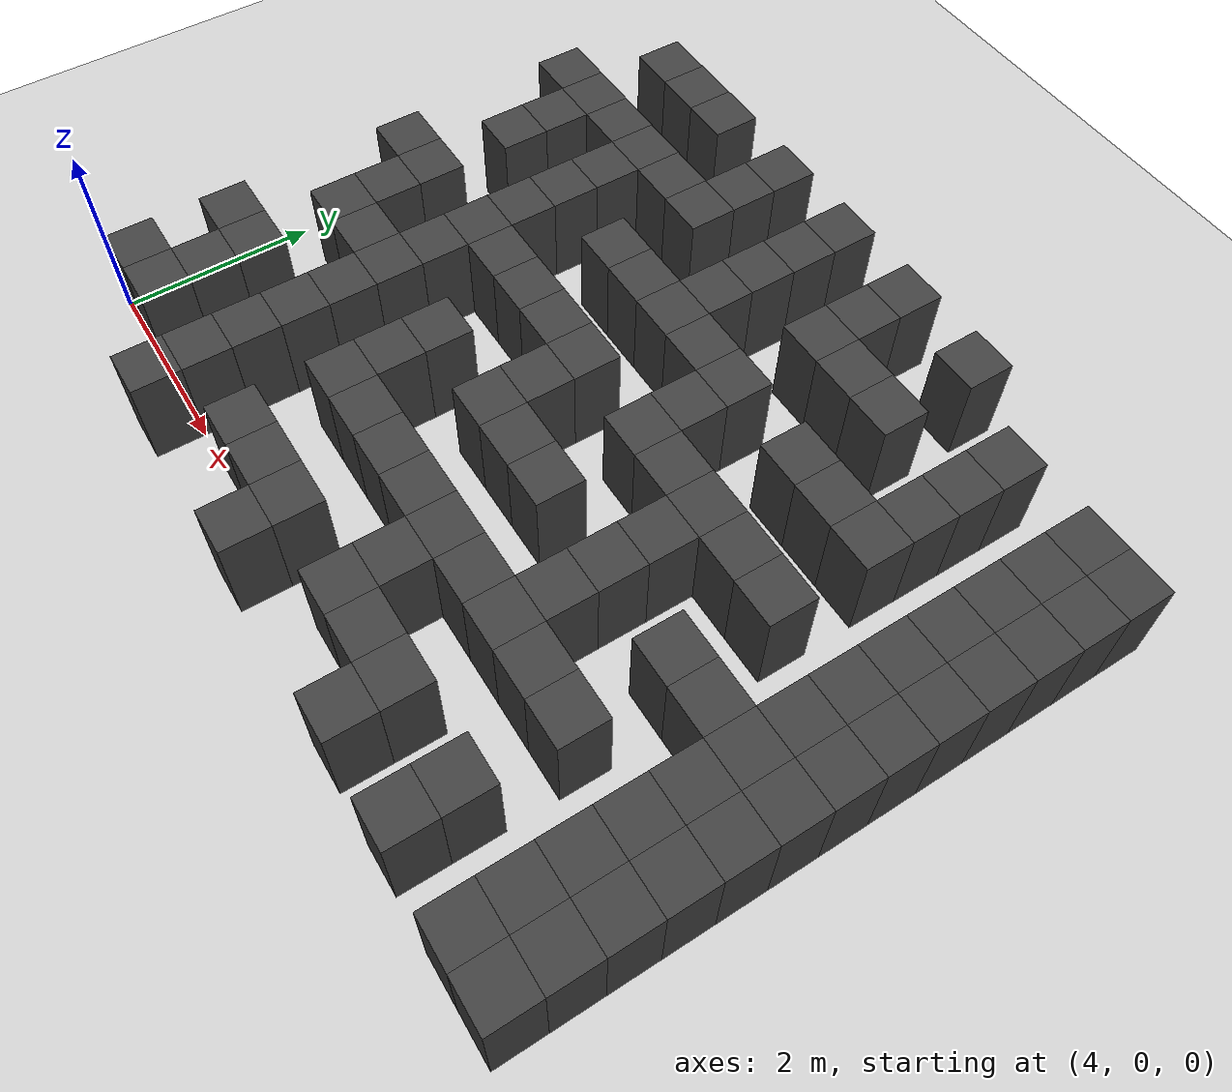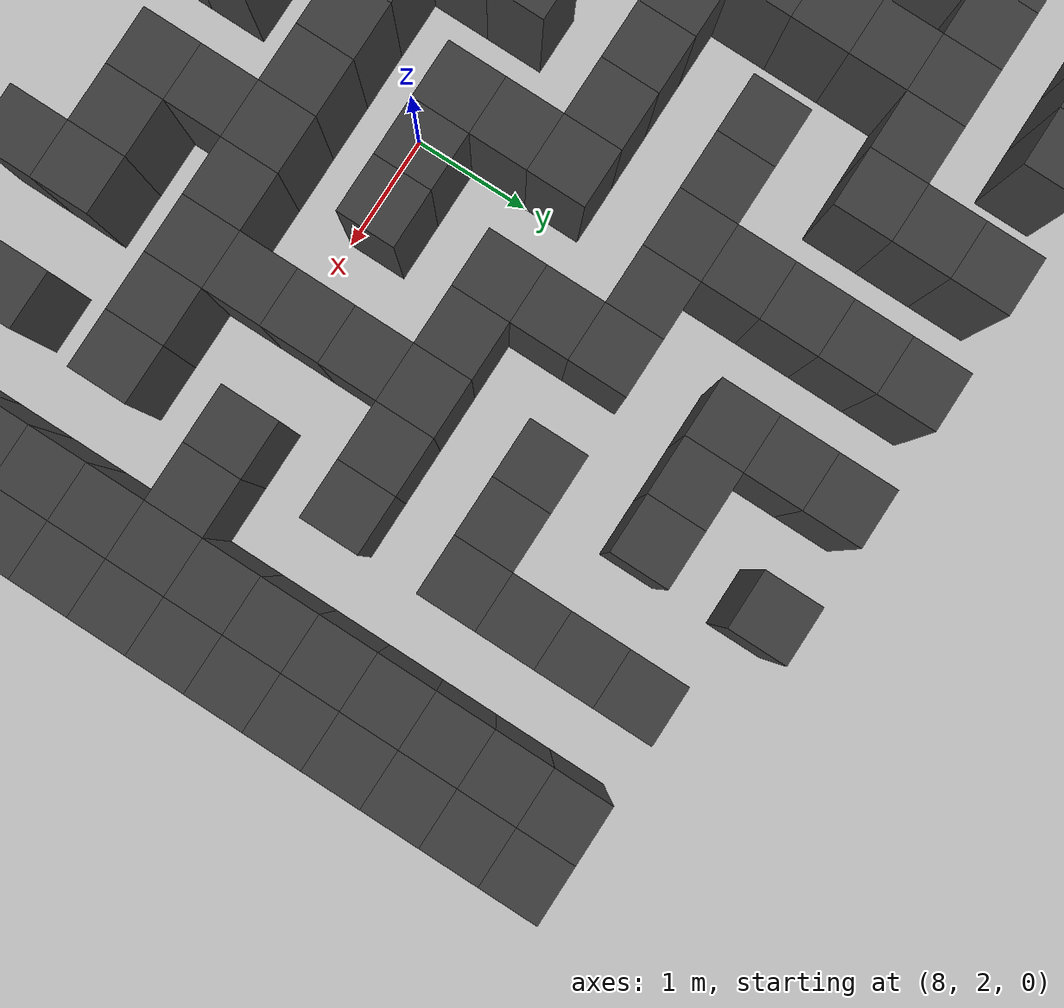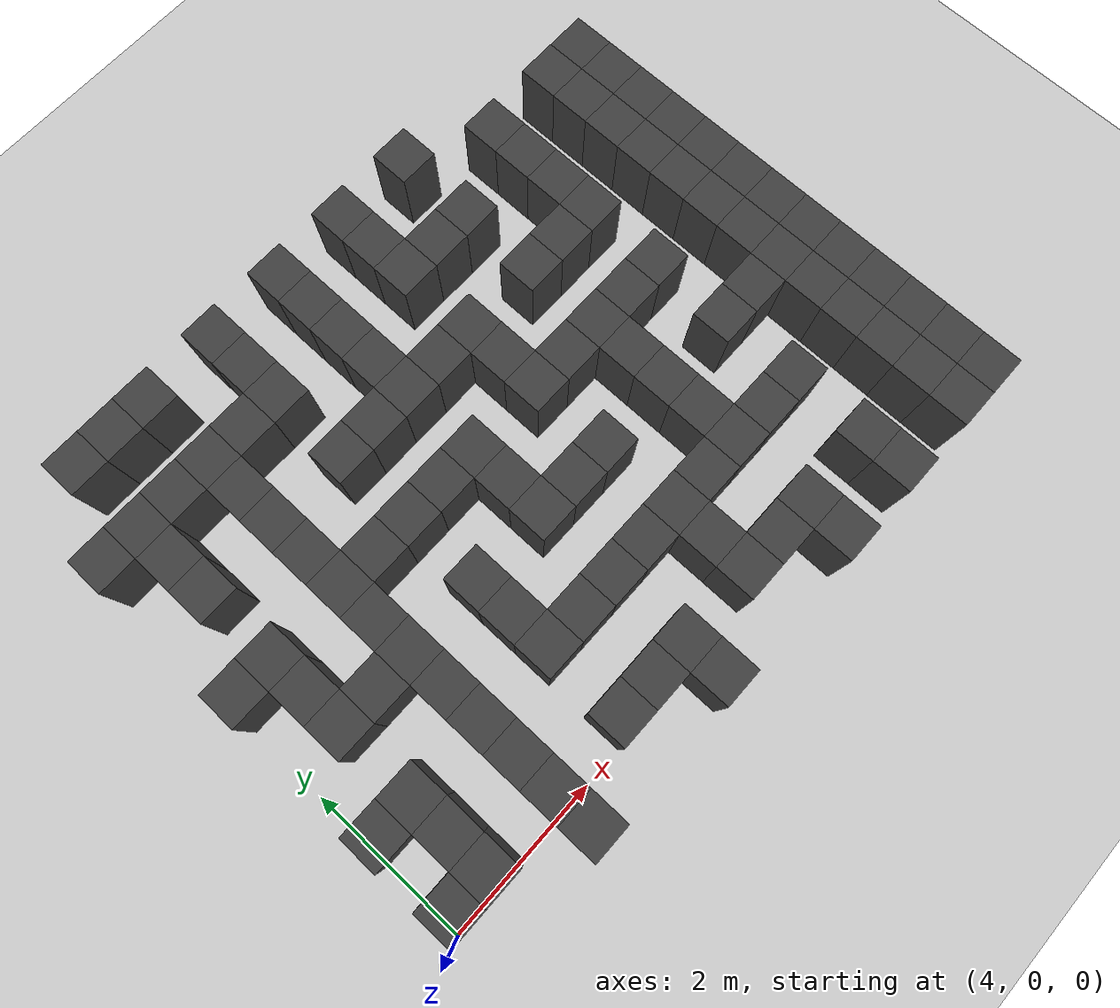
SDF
<sdf version="1.7">
 <world name="map_19815">
  <model name="ground_plane">
   <static>true</static>
   <link name="link">
    <collision name="collision">
     <geometry><plane><normal>0 0 1</normal><size>200 200</size></plane></geometry>
    </collision>
    <visual name="visual">
     <geometry><plane><normal>0 0 1</normal><size>200 200</size></plane></geometry>
     <material><ambient>0.8 0.8 0.8 1</ambient><diffuse>0.8 0.8 0.8 1</diffuse></material>
    </visual>
   </link>
  </model>
  <model name="maze_environment">
   <static>true</static>
   <link name="wall_343">
    <pose>4.750 6.250 0.500 0 0 0</pose>
    <collision name="col"><geometry><box><size>0.5 0.5 1.0</size></box></geometry></collision>
    <visual name="vis">
     <geometry><box><size>0.5 0.5 1.0</size></box></geometry>
     <material><ambient>0.15 0.15 0.15 1</ambient><diffuse>0.25 0.25 0.25 1</diffuse></material>
    </visual>
   </link>
   <link name="wall_344">
    <pose>5.250 6.250 0.500 0 0 0</pose>
    <collision name="col"><geometry><box><size>0.5 0.5 1.0</size></box></geometry></collision>
    <visual name="vis">
     <geometry><box><size>0.5 0.5 1.0</size></box></geometry>
     <material><ambient>0.15 0.15 0.15 1</ambient><diffuse>0.25 0.25 0.25 1</diffuse></material>
    </visual>
   </link>
   <link name="wall_345">
    <pose>5.750 6.250 0.500 0 0 0</pose>
    <collision name="col"><geometry><box><size>0.5 0.5 1.0</size></box></geometry></collision>
    <visual name="vis">
     <geometry><box><size>0.5 0.5 1.0</size></box></geometry>
     <material><ambient>0.15 0.15 0.15 1</ambient><diffuse>0.25 0.25 0.25 1</diffuse></material>
    </visual>
   </link>
   <link name="wall_346">
    <pose>6.750 6.250 0.500 0 0 0</pose>
    <collision name="col"><geometry><box><size>0.5 0.5 1.0</size></box></geometry></collision>
    <visual name="vis">
     <geometry><box><size>0.5 0.5 1.0</size></box></geometry>
     <material><ambient>0.15 0.15 0.15 1</ambient><diffuse>0.25 0.25 0.25 1</diffuse></material>
    </visual>
   </link>
   <link name="wall_347">
    <pose>7.750 6.250 0.500 0 0 0</pose>
    <collision name="col"><geometry><box><size>0.5 0.5 1.0</size></box></geometry></collision>
    <visual name="vis">
     <geometry><box><size>0.5 0.5 1.0</size></box></geometry>
     <material><ambient>0.15 0.15 0.15 1</ambient><diffuse>0.25 0.25 0.25 1</diffuse></material>
    </visual>
   </link>
   <link name="wall_348">
    <pose>8.750 6.250 0.500 0 0 0</pose>
    <collision name="col"><geometry><box><size>0.5 0.5 1.0</size></box></geometry></collision>
    <visual name="vis">
     <geometry><box><size>0.5 0.5 1.0</size></box></geometry>
     <material><ambient>0.15 0.15 0.15 1</ambient><diffuse>0.25 0.25 0.25 1</diffuse></material>
    </visual>
   </link>
   <link name="wall_349">
    <pose>9.750 6.250 0.500 0 0 0</pose>
    <collision name="col"><geometry><box><size>0.5 0.5 1.0</size></box></geometry></collision>
    <visual name="vis">
     <geometry><box><size>0.5 0.5 1.0</size></box></geometry>
     <material><ambient>0.15 0.15 0.15 1</ambient><diffuse>0.25 0.25 0.25 1</diffuse></material>
    </visual>
   </link>
   <link name="wall_364">
    <pose>6.750 5.750 0.500 0 0 0</pose>
    <collision name="col"><geometry><box><size>0.5 0.5 1.0</size></box></geometry></collision>
    <visual name="vis">
     <geometry><box><size>0.5 0.5 1.0</size></box></geometry>
     <material><ambient>0.15 0.15 0.15 1</ambient><diffuse>0.25 0.25 0.25 1</diffuse></material>
    </visual>
   </link>
   <link name="wall_365">
    <pose>7.750 5.750 0.500 0 0 0</pose>
    <collision name="col"><geometry><box><size>0.5 0.5 1.0</size></box></geometry></collision>
    <visual name="vis">
     <geometry><box><size>0.5 0.5 1.0</size></box></geometry>
     <material><ambient>0.15 0.15 0.15 1</ambient><diffuse>0.25 0.25 0.25 1</diffuse></material>
    </visual>
   </link>
   <link name="wall_366">
    <pose>8.750 5.750 0.500 0 0 0</pose>
    <collision name="col"><geometry><box><size>0.5 0.5 1.0</size></box></geometry></collision>
    <visual name="vis">
     <geometry><box><size>0.5 0.5 1.0</size></box></geometry>
     <material><ambient>0.15 0.15 0.15 1</ambient><diffuse>0.25 0.25 0.25 1</diffuse></material>
    </visual>
   </link>
   <link name="wall_367">
    <pose>10.750 5.750 0.500 0 0 0</pose>
    <collision name="col"><geometry><box><size>0.5 0.5 1.0</size></box></geometry></collision>
    <visual name="vis">
     <geometry><box><size>0.5 0.5 1.0</size></box></geometry>
     <material><ambient>0.15 0.15 0.15 1</ambient><diffuse>0.25 0.25 0.25 1</diffuse></material>
    </visual>
   </link>
   <link name="wall_368">
    <pose>11.750 5.750 0.500 0 0 0</pose>
    <collision name="col"><geometry><box><size>0.5 0.5 1.0</size></box></geometry></collision>
    <visual name="vis">
     <geometry><box><size>0.5 0.5 1.0</size></box></geometry>
     <material><ambient>0.15 0.15 0.15 1</ambient><diffuse>0.25 0.25 0.25 1</diffuse></material>
    </visual>
   </link>
   <link name="wall_369">
    <pose>12.250 5.750 0.500 0 0 0</pose>
    <collision name="col"><geometry><box><size>0.5 0.5 1.0</size></box></geometry></collision>
    <visual name="vis">
     <geometry><box><size>0.5 0.5 1.0</size></box></geometry>
     <material><ambient>0.15 0.15 0.15 1</ambient><diffuse>0.25 0.25 0.25 1</diffuse></material>
    </visual>
   </link>
   <link name="wall_393">
    <pose>4.250 5.250 0.500 0 0 0</pose>
    <collision name="col"><geometry><box><size>0.5 0.5 1.0</size></box></geometry></collision>
    <visual name="vis">
     <geometry><box><size>0.5 0.5 1.0</size></box></geometry>
     <material><ambient>0.15 0.15 0.15 1</ambient><diffuse>0.25 0.25 0.25 1</diffuse></material>
    </visual>
   </link>
   <link name="wall_394">
    <pose>4.750 5.250 0.500 0 0 0</pose>
    <collision name="col"><geometry><box><size>0.5 0.5 1.0</size></box></geometry></collision>
    <visual name="vis">
     <geometry><box><size>0.5 0.5 1.0</size></box></geometry>
     <material><ambient>0.15 0.15 0.15 1</ambient><diffuse>0.25 0.25 0.25 1</diffuse></material>
    </visual>
   </link>
   <link name="wall_395">
    <pose>5.250 5.250 0.500 0 0 0</pose>
    <collision name="col"><geometry><box><size>0.5 0.5 1.0</size></box></geometry></collision>
    <visual name="vis">
     <geometry><box><size>0.5 0.5 1.0</size></box></geometry>
     <material><ambient>0.15 0.15 0.15 1</ambient><diffuse>0.25 0.25 0.25 1</diffuse></material>
    </visual>
   </link>
   <link name="wall_396">
    <pose>5.750 5.250 0.500 0 0 0</pose>
    <collision name="col"><geometry><box><size>0.5 0.5 1.0</size></box></geometry></collision>
    <visual name="vis">
     <geometry><box><size>0.5 0.5 1.0</size></box></geometry>
     <material><ambient>0.15 0.15 0.15 1</ambient><diffuse>0.25 0.25 0.25 1</diffuse></material>
    </visual>
   </link>
   <link name="wall_397">
    <pose>6.250 5.250 0.500 0 0 0</pose>
    <collision name="col"><geometry><box><size>0.5 0.5 1.0</size></box></geometry></collision>
    <visual name="vis">
     <geometry><box><size>0.5 0.5 1.0</size></box></geometry>
     <material><ambient>0.15 0.15 0.15 1</ambient><diffuse>0.25 0.25 0.25 1</diffuse></material>
    </visual>
   </link>
   <link name="wall_398">
    <pose>6.750 5.250 0.500 0 0 0</pose>
    <collision name="col"><geometry><box><size>0.5 0.5 1.0</size></box></geometry></collision>
    <visual name="vis">
     <geometry><box><size>0.5 0.5 1.0</size></box></geometry>
     <material><ambient>0.15 0.15 0.15 1</ambient><diffuse>0.25 0.25 0.25 1</diffuse></material>
    </visual>
   </link>
   <link name="wall_399">
    <pose>7.750 5.250 0.500 0 0 0</pose>
    <collision name="col"><geometry><box><size>0.5 0.5 1.0</size></box></geometry></collision>
    <visual name="vis">
     <geometry><box><size>0.5 0.5 1.0</size></box></geometry>
     <material><ambient>0.15 0.15 0.15 1</ambient><diffuse>0.25 0.25 0.25 1</diffuse></material>
    </visual>
   </link>
   <link name="wall_400">
    <pose>8.750 5.250 0.500 0 0 0</pose>
    <collision name="col"><geometry><box><size>0.5 0.5 1.0</size></box></geometry></collision>
    <visual name="vis">
     <geometry><box><size>0.5 0.5 1.0</size></box></geometry>
     <material><ambient>0.15 0.15 0.15 1</ambient><diffuse>0.25 0.25 0.25 1</diffuse></material>
    </visual>
   </link>
   <link name="wall_401">
    <pose>9.250 5.250 0.500 0 0 0</pose>
    <collision name="col"><geometry><box><size>0.5 0.5 1.0</size></box></geometry></collision>
    <visual name="vis">
     <geometry><box><size>0.5 0.5 1.0</size></box></geometry>
     <material><ambient>0.15 0.15 0.15 1</ambient><diffuse>0.25 0.25 0.25 1</diffuse></material>
    </visual>
   </link>
   <link name="wall_402">
    <pose>9.750 5.250 0.500 0 0 0</pose>
    <collision name="col"><geometry><box><size>0.5 0.5 1.0</size></box></geometry></collision>
    <visual name="vis">
     <geometry><box><size>0.5 0.5 1.0</size></box></geometry>
     <material><ambient>0.15 0.15 0.15 1</ambient><diffuse>0.25 0.25 0.25 1</diffuse></material>
    </visual>
   </link>
   <link name="wall_403">
    <pose>10.750 5.250 0.500 0 0 0</pose>
    <collision name="col"><geometry><box><size>0.5 0.5 1.0</size></box></geometry></collision>
    <visual name="vis">
     <geometry><box><size>0.5 0.5 1.0</size></box></geometry>
     <material><ambient>0.15 0.15 0.15 1</ambient><diffuse>0.25 0.25 0.25 1</diffuse></material>
    </visual>
   </link>
   <link name="wall_404">
    <pose>11.750 5.250 0.500 0 0 0</pose>
    <collision name="col"><geometry><box><size>0.5 0.5 1.0</size></box></geometry></collision>
    <visual name="vis">
     <geometry><box><size>0.5 0.5 1.0</size></box></geometry>
     <material><ambient>0.15 0.15 0.15 1</ambient><diffuse>0.25 0.25 0.25 1</diffuse></material>
    </visual>
   </link>
   <link name="wall_405">
    <pose>12.250 5.250 0.500 0 0 0</pose>
    <collision name="col"><geometry><box><size>0.5 0.5 1.0</size></box></geometry></collision>
    <visual name="vis">
     <geometry><box><size>0.5 0.5 1.0</size></box></geometry>
     <material><ambient>0.15 0.15 0.15 1</ambient><diffuse>0.25 0.25 0.25 1</diffuse></material>
    </visual>
   </link>
   <link name="wall_414">
    <pose>4.750 4.750 0.500 0 0 0</pose>
    <collision name="col"><geometry><box><size>0.5 0.5 1.0</size></box></geometry></collision>
    <visual name="vis">
     <geometry><box><size>0.5 0.5 1.0</size></box></geometry>
     <material><ambient>0.15 0.15 0.15 1</ambient><diffuse>0.25 0.25 0.25 1</diffuse></material>
    </visual>
   </link>
   <link name="wall_415">
    <pose>5.750 4.750 0.500 0 0 0</pose>
    <collision name="col"><geometry><box><size>0.5 0.5 1.0</size></box></geometry></collision>
    <visual name="vis">
     <geometry><box><size>0.5 0.5 1.0</size></box></geometry>
     <material><ambient>0.15 0.15 0.15 1</ambient><diffuse>0.25 0.25 0.25 1</diffuse></material>
    </visual>
   </link>
   <link name="wall_416">
    <pose>7.750 4.750 0.500 0 0 0</pose>
    <collision name="col"><geometry><box><size>0.5 0.5 1.0</size></box></geometry></collision>
    <visual name="vis">
     <geometry><box><size>0.5 0.5 1.0</size></box></geometry>
     <material><ambient>0.15 0.15 0.15 1</ambient><diffuse>0.25 0.25 0.25 1</diffuse></material>
    </visual>
   </link>
   <link name="wall_417">
    <pose>10.750 4.750 0.500 0 0 0</pose>
    <collision name="col"><geometry><box><size>0.5 0.5 1.0</size></box></geometry></collision>
    <visual name="vis">
     <geometry><box><size>0.5 0.5 1.0</size></box></geometry>
     <material><ambient>0.15 0.15 0.15 1</ambient><diffuse>0.25 0.25 0.25 1</diffuse></material>
    </visual>
   </link>
   <link name="wall_418">
    <pose>11.750 4.750 0.500 0 0 0</pose>
    <collision name="col"><geometry><box><size>0.5 0.5 1.0</size></box></geometry></collision>
    <visual name="vis">
     <geometry><box><size>0.5 0.5 1.0</size></box></geometry>
     <material><ambient>0.15 0.15 0.15 1</ambient><diffuse>0.25 0.25 0.25 1</diffuse></material>
    </visual>
   </link>
   <link name="wall_419">
    <pose>12.250 4.750 0.500 0 0 0</pose>
    <collision name="col"><geometry><box><size>0.5 0.5 1.0</size></box></geometry></collision>
    <visual name="vis">
     <geometry><box><size>0.5 0.5 1.0</size></box></geometry>
     <material><ambient>0.15 0.15 0.15 1</ambient><diffuse>0.25 0.25 0.25 1</diffuse></material>
    </visual>
   </link>
   <link name="wall_447">
    <pose>4.750 4.250 0.500 0 0 0</pose>
    <collision name="col"><geometry><box><size>0.5 0.5 1.0</size></box></geometry></collision>
    <visual name="vis">
     <geometry><box><size>0.5 0.5 1.0</size></box></geometry>
     <material><ambient>0.15 0.15 0.15 1</ambient><diffuse>0.25 0.25 0.25 1</diffuse></material>
    </visual>
   </link>
   <link name="wall_448">
    <pose>5.750 4.250 0.500 0 0 0</pose>
    <collision name="col"><geometry><box><size>0.5 0.5 1.0</size></box></geometry></collision>
    <visual name="vis">
     <geometry><box><size>0.5 0.5 1.0</size></box></geometry>
     <material><ambient>0.15 0.15 0.15 1</ambient><diffuse>0.25 0.25 0.25 1</diffuse></material>
    </visual>
   </link>
   <link name="wall_449">
    <pose>6.750 4.250 0.500 0 0 0</pose>
    <collision name="col"><geometry><box><size>0.5 0.5 1.0</size></box></geometry></collision>
    <visual name="vis">
     <geometry><box><size>0.5 0.5 1.0</size></box></geometry>
     <material><ambient>0.15 0.15 0.15 1</ambient><diffuse>0.25 0.25 0.25 1</diffuse></material>
    </visual>
   </link>
   <link name="wall_450">
    <pose>7.250 4.250 0.500 0 0 0</pose>
    <collision name="col"><geometry><box><size>0.5 0.5 1.0</size></box></geometry></collision>
    <visual name="vis">
     <geometry><box><size>0.5 0.5 1.0</size></box></geometry>
     <material><ambient>0.15 0.15 0.15 1</ambient><diffuse>0.25 0.25 0.25 1</diffuse></material>
    </visual>
   </link>
   <link name="wall_451">
    <pose>7.750 4.250 0.500 0 0 0</pose>
    <collision name="col"><geometry><box><size>0.5 0.5 1.0</size></box></geometry></collision>
    <visual name="vis">
     <geometry><box><size>0.5 0.5 1.0</size></box></geometry>
     <material><ambient>0.15 0.15 0.15 1</ambient><diffuse>0.25 0.25 0.25 1</diffuse></material>
    </visual>
   </link>
   <link name="wall_452">
    <pose>8.250 4.250 0.500 0 0 0</pose>
    <collision name="col"><geometry><box><size>0.5 0.5 1.0</size></box></geometry></collision>
    <visual name="vis">
     <geometry><box><size>0.5 0.5 1.0</size></box></geometry>
     <material><ambient>0.15 0.15 0.15 1</ambient><diffuse>0.25 0.25 0.25 1</diffuse></material>
    </visual>
   </link>
   <link name="wall_453">
    <pose>8.750 4.250 0.500 0 0 0</pose>
    <collision name="col"><geometry><box><size>0.5 0.5 1.0</size></box></geometry></collision>
    <visual name="vis">
     <geometry><box><size>0.5 0.5 1.0</size></box></geometry>
     <material><ambient>0.15 0.15 0.15 1</ambient><diffuse>0.25 0.25 0.25 1</diffuse></material>
    </visual>
   </link>
   <link name="wall_454">
    <pose>9.750 4.250 0.500 0 0 0</pose>
    <collision name="col"><geometry><box><size>0.5 0.5 1.0</size></box></geometry></collision>
    <visual name="vis">
     <geometry><box><size>0.5 0.5 1.0</size></box></geometry>
     <material><ambient>0.15 0.15 0.15 1</ambient><diffuse>0.25 0.25 0.25 1</diffuse></material>
    </visual>
   </link>
   <link name="wall_455">
    <pose>10.250 4.250 0.500 0 0 0</pose>
    <collision name="col"><geometry><box><size>0.5 0.5 1.0</size></box></geometry></collision>
    <visual name="vis">
     <geometry><box><size>0.5 0.5 1.0</size></box></geometry>
     <material><ambient>0.15 0.15 0.15 1</ambient><diffuse>0.25 0.25 0.25 1</diffuse></material>
    </visual>
   </link>
   <link name="wall_456">
    <pose>10.750 4.250 0.500 0 0 0</pose>
    <collision name="col"><geometry><box><size>0.5 0.5 1.0</size></box></geometry></collision>
    <visual name="vis">
     <geometry><box><size>0.5 0.5 1.0</size></box></geometry>
     <material><ambient>0.15 0.15 0.15 1</ambient><diffuse>0.25 0.25 0.25 1</diffuse></material>
    </visual>
   </link>
   <link name="wall_457">
    <pose>11.750 4.250 0.500 0 0 0</pose>
    <collision name="col"><geometry><box><size>0.5 0.5 1.0</size></box></geometry></collision>
    <visual name="vis">
     <geometry><box><size>0.5 0.5 1.0</size></box></geometry>
     <material><ambient>0.15 0.15 0.15 1</ambient><diffuse>0.25 0.25 0.25 1</diffuse></material>
    </visual>
   </link>
   <link name="wall_458">
    <pose>12.250 4.250 0.500 0 0 0</pose>
    <collision name="col"><geometry><box><size>0.5 0.5 1.0</size></box></geometry></collision>
    <visual name="vis">
     <geometry><box><size>0.5 0.5 1.0</size></box></geometry>
     <material><ambient>0.15 0.15 0.15 1</ambient><diffuse>0.25 0.25 0.25 1</diffuse></material>
    </visual>
   </link>
   <link name="wall_466">
    <pose>5.750 3.750 0.500 0 0 0</pose>
    <collision name="col"><geometry><box><size>0.5 0.5 1.0</size></box></geometry></collision>
    <visual name="vis">
     <geometry><box><size>0.5 0.5 1.0</size></box></geometry>
     <material><ambient>0.15 0.15 0.15 1</ambient><diffuse>0.25 0.25 0.25 1</diffuse></material>
    </visual>
   </link>
   <link name="wall_467">
    <pose>8.750 3.750 0.500 0 0 0</pose>
    <collision name="col"><geometry><box><size>0.5 0.5 1.0</size></box></geometry></collision>
    <visual name="vis">
     <geometry><box><size>0.5 0.5 1.0</size></box></geometry>
     <material><ambient>0.15 0.15 0.15 1</ambient><diffuse>0.25 0.25 0.25 1</diffuse></material>
    </visual>
   </link>
   <link name="wall_468">
    <pose>11.750 3.750 0.500 0 0 0</pose>
    <collision name="col"><geometry><box><size>0.5 0.5 1.0</size></box></geometry></collision>
    <visual name="vis">
     <geometry><box><size>0.5 0.5 1.0</size></box></geometry>
     <material><ambient>0.15 0.15 0.15 1</ambient><diffuse>0.25 0.25 0.25 1</diffuse></material>
    </visual>
   </link>
   <link name="wall_469">
    <pose>12.250 3.750 0.500 0 0 0</pose>
    <collision name="col"><geometry><box><size>0.5 0.5 1.0</size></box></geometry></collision>
    <visual name="vis">
     <geometry><box><size>0.5 0.5 1.0</size></box></geometry>
     <material><ambient>0.15 0.15 0.15 1</ambient><diffuse>0.25 0.25 0.25 1</diffuse></material>
    </visual>
   </link>
   <link name="wall_494">
    <pose>4.250 3.250 0.500 0 0 0</pose>
    <collision name="col"><geometry><box><size>0.5 0.5 1.0</size></box></geometry></collision>
    <visual name="vis">
     <geometry><box><size>0.5 0.5 1.0</size></box></geometry>
     <material><ambient>0.15 0.15 0.15 1</ambient><diffuse>0.25 0.25 0.25 1</diffuse></material>
    </visual>
   </link>
   <link name="wall_495">
    <pose>4.750 3.250 0.500 0 0 0</pose>
    <collision name="col"><geometry><box><size>0.5 0.5 1.0</size></box></geometry></collision>
    <visual name="vis">
     <geometry><box><size>0.5 0.5 1.0</size></box></geometry>
     <material><ambient>0.15 0.15 0.15 1</ambient><diffuse>0.25 0.25 0.25 1</diffuse></material>
    </visual>
   </link>
   <link name="wall_496">
    <pose>5.750 3.250 0.500 0 0 0</pose>
    <collision name="col"><geometry><box><size>0.5 0.5 1.0</size></box></geometry></collision>
    <visual name="vis">
     <geometry><box><size>0.5 0.5 1.0</size></box></geometry>
     <material><ambient>0.15 0.15 0.15 1</ambient><diffuse>0.25 0.25 0.25 1</diffuse></material>
    </visual>
   </link>
   <link name="wall_497">
    <pose>6.250 3.250 0.500 0 0 0</pose>
    <collision name="col"><geometry><box><size>0.5 0.5 1.0</size></box></geometry></collision>
    <visual name="vis">
     <geometry><box><size>0.5 0.5 1.0</size></box></geometry>
     <material><ambient>0.15 0.15 0.15 1</ambient><diffuse>0.25 0.25 0.25 1</diffuse></material>
    </visual>
   </link>
   <link name="wall_498">
    <pose>6.750 3.250 0.500 0 0 0</pose>
    <collision name="col"><geometry><box><size>0.5 0.5 1.0</size></box></geometry></collision>
    <visual name="vis">
     <geometry><box><size>0.5 0.5 1.0</size></box></geometry>
     <material><ambient>0.15 0.15 0.15 1</ambient><diffuse>0.25 0.25 0.25 1</diffuse></material>
    </visual>
   </link>
   <link name="wall_499">
    <pose>7.250 3.250 0.500 0 0 0</pose>
    <collision name="col"><geometry><box><size>0.5 0.5 1.0</size></box></geometry></collision>
    <visual name="vis">
     <geometry><box><size>0.5 0.5 1.0</size></box></geometry>
     <material><ambient>0.15 0.15 0.15 1</ambient><diffuse>0.25 0.25 0.25 1</diffuse></material>
    </visual>
   </link>
   <link name="wall_500">
    <pose>7.750 3.250 0.500 0 0 0</pose>
    <collision name="col"><geometry><box><size>0.5 0.5 1.0</size></box></geometry></collision>
    <visual name="vis">
     <geometry><box><size>0.5 0.5 1.0</size></box></geometry>
     <material><ambient>0.15 0.15 0.15 1</ambient><diffuse>0.25 0.25 0.25 1</diffuse></material>
    </visual>
   </link>
   <link name="wall_501">
    <pose>8.750 3.250 0.500 0 0 0</pose>
    <collision name="col"><geometry><box><size>0.5 0.5 1.0</size></box></geometry></collision>
    <visual name="vis">
     <geometry><box><size>0.5 0.5 1.0</size></box></geometry>
     <material><ambient>0.15 0.15 0.15 1</ambient><diffuse>0.25 0.25 0.25 1</diffuse></material>
    </visual>
   </link>
   <link name="wall_502">
    <pose>9.250 3.250 0.500 0 0 0</pose>
    <collision name="col"><geometry><box><size>0.5 0.5 1.0</size></box></geometry></collision>
    <visual name="vis">
     <geometry><box><size>0.5 0.5 1.0</size></box></geometry>
     <material><ambient>0.15 0.15 0.15 1</ambient><diffuse>0.25 0.25 0.25 1</diffuse></material>
    </visual>
   </link>
   <link name="wall_503">
    <pose>9.750 3.250 0.500 0 0 0</pose>
    <collision name="col"><geometry><box><size>0.5 0.5 1.0</size></box></geometry></collision>
    <visual name="vis">
     <geometry><box><size>0.5 0.5 1.0</size></box></geometry>
     <material><ambient>0.15 0.15 0.15 1</ambient><diffuse>0.25 0.25 0.25 1</diffuse></material>
    </visual>
   </link>
   <link name="wall_504">
    <pose>10.250 3.250 0.500 0 0 0</pose>
    <collision name="col"><geometry><box><size>0.5 0.5 1.0</size></box></geometry></collision>
    <visual name="vis">
     <geometry><box><size>0.5 0.5 1.0</size></box></geometry>
     <material><ambient>0.15 0.15 0.15 1</ambient><diffuse>0.25 0.25 0.25 1</diffuse></material>
    </visual>
   </link>
   <link name="wall_505">
    <pose>10.750 3.250 0.500 0 0 0</pose>
    <collision name="col"><geometry><box><size>0.5 0.5 1.0</size></box></geometry></collision>
    <visual name="vis">
     <geometry><box><size>0.5 0.5 1.0</size></box></geometry>
     <material><ambient>0.15 0.15 0.15 1</ambient><diffuse>0.25 0.25 0.25 1</diffuse></material>
    </visual>
   </link>
   <link name="wall_506">
    <pose>11.750 3.250 0.500 0 0 0</pose>
    <collision name="col"><geometry><box><size>0.5 0.5 1.0</size></box></geometry></collision>
    <visual name="vis">
     <geometry><box><size>0.5 0.5 1.0</size></box></geometry>
     <material><ambient>0.15 0.15 0.15 1</ambient><diffuse>0.25 0.25 0.25 1</diffuse></material>
    </visual>
   </link>
   <link name="wall_507">
    <pose>12.250 3.250 0.500 0 0 0</pose>
    <collision name="col"><geometry><box><size>0.5 0.5 1.0</size></box></geometry></collision>
    <visual name="vis">
     <geometry><box><size>0.5 0.5 1.0</size></box></geometry>
     <material><ambient>0.15 0.15 0.15 1</ambient><diffuse>0.25 0.25 0.25 1</diffuse></material>
    </visual>
   </link>
   <link name="wall_516">
    <pose>4.750 2.750 0.500 0 0 0</pose>
    <collision name="col"><geometry><box><size>0.5 0.5 1.0</size></box></geometry></collision>
    <visual name="vis">
     <geometry><box><size>0.5 0.5 1.0</size></box></geometry>
     <material><ambient>0.15 0.15 0.15 1</ambient><diffuse>0.25 0.25 0.25 1</diffuse></material>
    </visual>
   </link>
   <link name="wall_517">
    <pose>5.750 2.750 0.500 0 0 0</pose>
    <collision name="col"><geometry><box><size>0.5 0.5 1.0</size></box></geometry></collision>
    <visual name="vis">
     <geometry><box><size>0.5 0.5 1.0</size></box></geometry>
     <material><ambient>0.15 0.15 0.15 1</ambient><diffuse>0.25 0.25 0.25 1</diffuse></material>
    </visual>
   </link>
   <link name="wall_518">
    <pose>7.750 2.750 0.500 0 0 0</pose>
    <collision name="col"><geometry><box><size>0.5 0.5 1.0</size></box></geometry></collision>
    <visual name="vis">
     <geometry><box><size>0.5 0.5 1.0</size></box></geometry>
     <material><ambient>0.15 0.15 0.15 1</ambient><diffuse>0.25 0.25 0.25 1</diffuse></material>
    </visual>
   </link>
   <link name="wall_519">
    <pose>9.750 2.750 0.500 0 0 0</pose>
    <collision name="col"><geometry><box><size>0.5 0.5 1.0</size></box></geometry></collision>
    <visual name="vis">
     <geometry><box><size>0.5 0.5 1.0</size></box></geometry>
     <material><ambient>0.15 0.15 0.15 1</ambient><diffuse>0.25 0.25 0.25 1</diffuse></material>
    </visual>
   </link>
   <link name="wall_520">
    <pose>11.750 2.750 0.500 0 0 0</pose>
    <collision name="col"><geometry><box><size>0.5 0.5 1.0</size></box></geometry></collision>
    <visual name="vis">
     <geometry><box><size>0.5 0.5 1.0</size></box></geometry>
     <material><ambient>0.15 0.15 0.15 1</ambient><diffuse>0.25 0.25 0.25 1</diffuse></material>
    </visual>
   </link>
   <link name="wall_521">
    <pose>12.250 2.750 0.500 0 0 0</pose>
    <collision name="col"><geometry><box><size>0.5 0.5 1.0</size></box></geometry></collision>
    <visual name="vis">
     <geometry><box><size>0.5 0.5 1.0</size></box></geometry>
     <material><ambient>0.15 0.15 0.15 1</ambient><diffuse>0.25 0.25 0.25 1</diffuse></material>
    </visual>
   </link>
   <link name="wall_551">
    <pose>4.750 2.250 0.500 0 0 0</pose>
    <collision name="col"><geometry><box><size>0.5 0.5 1.0</size></box></geometry></collision>
    <visual name="vis">
     <geometry><box><size>0.5 0.5 1.0</size></box></geometry>
     <material><ambient>0.15 0.15 0.15 1</ambient><diffuse>0.25 0.25 0.25 1</diffuse></material>
    </visual>
   </link>
   <link name="wall_552">
    <pose>5.250 2.250 0.500 0 0 0</pose>
    <collision name="col"><geometry><box><size>0.5 0.5 1.0</size></box></geometry></collision>
    <visual name="vis">
     <geometry><box><size>0.5 0.5 1.0</size></box></geometry>
     <material><ambient>0.15 0.15 0.15 1</ambient><diffuse>0.25 0.25 0.25 1</diffuse></material>
    </visual>
   </link>
   <link name="wall_553">
    <pose>5.750 2.250 0.500 0 0 0</pose>
    <collision name="col"><geometry><box><size>0.5 0.5 1.0</size></box></geometry></collision>
    <visual name="vis">
     <geometry><box><size>0.5 0.5 1.0</size></box></geometry>
     <material><ambient>0.15 0.15 0.15 1</ambient><diffuse>0.25 0.25 0.25 1</diffuse></material>
    </visual>
   </link>
   <link name="wall_554">
    <pose>6.750 2.250 0.500 0 0 0</pose>
    <collision name="col"><geometry><box><size>0.5 0.5 1.0</size></box></geometry></collision>
    <visual name="vis">
     <geometry><box><size>0.5 0.5 1.0</size></box></geometry>
     <material><ambient>0.15 0.15 0.15 1</ambient><diffuse>0.25 0.25 0.25 1</diffuse></material>
    </visual>
   </link>
   <link name="wall_555">
    <pose>7.750 2.250 0.500 0 0 0</pose>
    <collision name="col"><geometry><box><size>0.5 0.5 1.0</size></box></geometry></collision>
    <visual name="vis">
     <geometry><box><size>0.5 0.5 1.0</size></box></geometry>
     <material><ambient>0.15 0.15 0.15 1</ambient><diffuse>0.25 0.25 0.25 1</diffuse></material>
    </visual>
   </link>
   <link name="wall_556">
    <pose>8.250 2.250 0.500 0 0 0</pose>
    <collision name="col"><geometry><box><size>0.5 0.5 1.0</size></box></geometry></collision>
    <visual name="vis">
     <geometry><box><size>0.5 0.5 1.0</size></box></geometry>
     <material><ambient>0.15 0.15 0.15 1</ambient><diffuse>0.25 0.25 0.25 1</diffuse></material>
    </visual>
   </link>
   <link name="wall_557">
    <pose>8.750 2.250 0.500 0 0 0</pose>
    <collision name="col"><geometry><box><size>0.5 0.5 1.0</size></box></geometry></collision>
    <visual name="vis">
     <geometry><box><size>0.5 0.5 1.0</size></box></geometry>
     <material><ambient>0.15 0.15 0.15 1</ambient><diffuse>0.25 0.25 0.25 1</diffuse></material>
    </visual>
   </link>
   <link name="wall_558">
    <pose>9.750 2.250 0.500 0 0 0</pose>
    <collision name="col"><geometry><box><size>0.5 0.5 1.0</size></box></geometry></collision>
    <visual name="vis">
     <geometry><box><size>0.5 0.5 1.0</size></box></geometry>
     <material><ambient>0.15 0.15 0.15 1</ambient><diffuse>0.25 0.25 0.25 1</diffuse></material>
    </visual>
   </link>
   <link name="wall_559">
    <pose>10.750 2.250 0.500 0 0 0</pose>
    <collision name="col"><geometry><box><size>0.5 0.5 1.0</size></box></geometry></collision>
    <visual name="vis">
     <geometry><box><size>0.5 0.5 1.0</size></box></geometry>
     <material><ambient>0.15 0.15 0.15 1</ambient><diffuse>0.25 0.25 0.25 1</diffuse></material>
    </visual>
   </link>
   <link name="wall_560">
    <pose>11.250 2.250 0.500 0 0 0</pose>
    <collision name="col"><geometry><box><size>0.5 0.5 1.0</size></box></geometry></collision>
    <visual name="vis">
     <geometry><box><size>0.5 0.5 1.0</size></box></geometry>
     <material><ambient>0.15 0.15 0.15 1</ambient><diffuse>0.25 0.25 0.25 1</diffuse></material>
    </visual>
   </link>
   <link name="wall_561">
    <pose>11.750 2.250 0.500 0 0 0</pose>
    <collision name="col"><geometry><box><size>0.5 0.5 1.0</size></box></geometry></collision>
    <visual name="vis">
     <geometry><box><size>0.5 0.5 1.0</size></box></geometry>
     <material><ambient>0.15 0.15 0.15 1</ambient><diffuse>0.25 0.25 0.25 1</diffuse></material>
    </visual>
   </link>
   <link name="wall_562">
    <pose>12.250 2.250 0.500 0 0 0</pose>
    <collision name="col"><geometry><box><size>0.5 0.5 1.0</size></box></geometry></collision>
    <visual name="vis">
     <geometry><box><size>0.5 0.5 1.0</size></box></geometry>
     <material><ambient>0.15 0.15 0.15 1</ambient><diffuse>0.25 0.25 0.25 1</diffuse></material>
    </visual>
   </link>
   <link name="wall_569">
    <pose>5.750 1.750 0.500 0 0 0</pose>
    <collision name="col"><geometry><box><size>0.5 0.5 1.0</size></box></geometry></collision>
    <visual name="vis">
     <geometry><box><size>0.5 0.5 1.0</size></box></geometry>
     <material><ambient>0.15 0.15 0.15 1</ambient><diffuse>0.25 0.25 0.25 1</diffuse></material>
    </visual>
   </link>
   <link name="wall_570">
    <pose>6.750 1.750 0.500 0 0 0</pose>
    <collision name="col"><geometry><box><size>0.5 0.5 1.0</size></box></geometry></collision>
    <visual name="vis">
     <geometry><box><size>0.5 0.5 1.0</size></box></geometry>
     <material><ambient>0.15 0.15 0.15 1</ambient><diffuse>0.25 0.25 0.25 1</diffuse></material>
    </visual>
   </link>
   <link name="wall_571">
    <pose>9.750 1.750 0.500 0 0 0</pose>
    <collision name="col"><geometry><box><size>0.5 0.5 1.0</size></box></geometry></collision>
    <visual name="vis">
     <geometry><box><size>0.5 0.5 1.0</size></box></geometry>
     <material><ambient>0.15 0.15 0.15 1</ambient><diffuse>0.25 0.25 0.25 1</diffuse></material>
    </visual>
   </link>
   <link name="wall_572">
    <pose>11.750 1.750 0.500 0 0 0</pose>
    <collision name="col"><geometry><box><size>0.5 0.5 1.0</size></box></geometry></collision>
    <visual name="vis">
     <geometry><box><size>0.5 0.5 1.0</size></box></geometry>
     <material><ambient>0.15 0.15 0.15 1</ambient><diffuse>0.25 0.25 0.25 1</diffuse></material>
    </visual>
   </link>
   <link name="wall_573">
    <pose>12.250 1.750 0.500 0 0 0</pose>
    <collision name="col"><geometry><box><size>0.5 0.5 1.0</size></box></geometry></collision>
    <visual name="vis">
     <geometry><box><size>0.5 0.5 1.0</size></box></geometry>
     <material><ambient>0.15 0.15 0.15 1</ambient><diffuse>0.25 0.25 0.25 1</diffuse></material>
    </visual>
   </link>
   <link name="wall_601">
    <pose>4.250 1.250 0.500 0 0 0</pose>
    <collision name="col"><geometry><box><size>0.5 0.5 1.0</size></box></geometry></collision>
    <visual name="vis">
     <geometry><box><size>0.5 0.5 1.0</size></box></geometry>
     <material><ambient>0.15 0.15 0.15 1</ambient><diffuse>0.25 0.25 0.25 1</diffuse></material>
    </visual>
   </link>
   <link name="wall_602">
    <pose>4.750 1.250 0.500 0 0 0</pose>
    <collision name="col"><geometry><box><size>0.5 0.5 1.0</size></box></geometry></collision>
    <visual name="vis">
     <geometry><box><size>0.5 0.5 1.0</size></box></geometry>
     <material><ambient>0.15 0.15 0.15 1</ambient><diffuse>0.25 0.25 0.25 1</diffuse></material>
    </visual>
   </link>
   <link name="wall_603">
    <pose>5.750 1.250 0.500 0 0 0</pose>
    <collision name="col"><geometry><box><size>0.5 0.5 1.0</size></box></geometry></collision>
    <visual name="vis">
     <geometry><box><size>0.5 0.5 1.0</size></box></geometry>
     <material><ambient>0.15 0.15 0.15 1</ambient><diffuse>0.25 0.25 0.25 1</diffuse></material>
    </visual>
   </link>
   <link name="wall_604">
    <pose>6.750 1.250 0.500 0 0 0</pose>
    <collision name="col"><geometry><box><size>0.5 0.5 1.0</size></box></geometry></collision>
    <visual name="vis">
     <geometry><box><size>0.5 0.5 1.0</size></box></geometry>
     <material><ambient>0.15 0.15 0.15 1</ambient><diffuse>0.25 0.25 0.25 1</diffuse></material>
    </visual>
   </link>
   <link name="wall_605">
    <pose>7.250 1.250 0.500 0 0 0</pose>
    <collision name="col"><geometry><box><size>0.5 0.5 1.0</size></box></geometry></collision>
    <visual name="vis">
     <geometry><box><size>0.5 0.5 1.0</size></box></geometry>
     <material><ambient>0.15 0.15 0.15 1</ambient><diffuse>0.25 0.25 0.25 1</diffuse></material>
    </visual>
   </link>
   <link name="wall_606">
    <pose>7.750 1.250 0.500 0 0 0</pose>
    <collision name="col"><geometry><box><size>0.5 0.5 1.0</size></box></geometry></collision>
    <visual name="vis">
     <geometry><box><size>0.5 0.5 1.0</size></box></geometry>
     <material><ambient>0.15 0.15 0.15 1</ambient><diffuse>0.25 0.25 0.25 1</diffuse></material>
    </visual>
   </link>
   <link name="wall_607">
    <pose>8.250 1.250 0.500 0 0 0</pose>
    <collision name="col"><geometry><box><size>0.5 0.5 1.0</size></box></geometry></collision>
    <visual name="vis">
     <geometry><box><size>0.5 0.5 1.0</size></box></geometry>
     <material><ambient>0.15 0.15 0.15 1</ambient><diffuse>0.25 0.25 0.25 1</diffuse></material>
    </visual>
   </link>
   <link name="wall_608">
    <pose>8.750 1.250 0.500 0 0 0</pose>
    <collision name="col"><geometry><box><size>0.5 0.5 1.0</size></box></geometry></collision>
    <visual name="vis">
     <geometry><box><size>0.5 0.5 1.0</size></box></geometry>
     <material><ambient>0.15 0.15 0.15 1</ambient><diffuse>0.25 0.25 0.25 1</diffuse></material>
    </visual>
   </link>
   <link name="wall_609">
    <pose>9.250 1.250 0.500 0 0 0</pose>
    <collision name="col"><geometry><box><size>0.5 0.5 1.0</size></box></geometry></collision>
    <visual name="vis">
     <geometry><box><size>0.5 0.5 1.0</size></box></geometry>
     <material><ambient>0.15 0.15 0.15 1</ambient><diffuse>0.25 0.25 0.25 1</diffuse></material>
    </visual>
   </link>
   <link name="wall_610">
    <pose>9.750 1.250 0.500 0 0 0</pose>
    <collision name="col"><geometry><box><size>0.5 0.5 1.0</size></box></geometry></collision>
    <visual name="vis">
     <geometry><box><size>0.5 0.5 1.0</size></box></geometry>
     <material><ambient>0.15 0.15 0.15 1</ambient><diffuse>0.25 0.25 0.25 1</diffuse></material>
    </visual>
   </link>
   <link name="wall_611">
    <pose>10.250 1.250 0.500 0 0 0</pose>
    <collision name="col"><geometry><box><size>0.5 0.5 1.0</size></box></geometry></collision>
    <visual name="vis">
     <geometry><box><size>0.5 0.5 1.0</size></box></geometry>
     <material><ambient>0.15 0.15 0.15 1</ambient><diffuse>0.25 0.25 0.25 1</diffuse></material>
    </visual>
   </link>
   <link name="wall_612">
    <pose>10.750 1.250 0.500 0 0 0</pose>
    <collision name="col"><geometry><box><size>0.5 0.5 1.0</size></box></geometry></collision>
    <visual name="vis">
     <geometry><box><size>0.5 0.5 1.0</size></box></geometry>
     <material><ambient>0.15 0.15 0.15 1</ambient><diffuse>0.25 0.25 0.25 1</diffuse></material>
    </visual>
   </link>
   <link name="wall_613">
    <pose>11.750 1.250 0.500 0 0 0</pose>
    <collision name="col"><geometry><box><size>0.5 0.5 1.0</size></box></geometry></collision>
    <visual name="vis">
     <geometry><box><size>0.5 0.5 1.0</size></box></geometry>
     <material><ambient>0.15 0.15 0.15 1</ambient><diffuse>0.25 0.25 0.25 1</diffuse></material>
    </visual>
   </link>
   <link name="wall_614">
    <pose>12.250 1.250 0.500 0 0 0</pose>
    <collision name="col"><geometry><box><size>0.5 0.5 1.0</size></box></geometry></collision>
    <visual name="vis">
     <geometry><box><size>0.5 0.5 1.0</size></box></geometry>
     <material><ambient>0.15 0.15 0.15 1</ambient><diffuse>0.25 0.25 0.25 1</diffuse></material>
    </visual>
   </link>
   <link name="wall_621">
    <pose>4.750 0.750 0.500 0 0 0</pose>
    <collision name="col"><geometry><box><size>0.5 0.5 1.0</size></box></geometry></collision>
    <visual name="vis">
     <geometry><box><size>0.5 0.5 1.0</size></box></geometry>
     <material><ambient>0.15 0.15 0.15 1</ambient><diffuse>0.25 0.25 0.25 1</diffuse></material>
    </visual>
   </link>
   <link name="wall_622">
    <pose>5.750 0.750 0.500 0 0 0</pose>
    <collision name="col"><geometry><box><size>0.5 0.5 1.0</size></box></geometry></collision>
    <visual name="vis">
     <geometry><box><size>0.5 0.5 1.0</size></box></geometry>
     <material><ambient>0.15 0.15 0.15 1</ambient><diffuse>0.25 0.25 0.25 1</diffuse></material>
    </visual>
   </link>
   <link name="wall_623">
    <pose>8.750 0.750 0.500 0 0 0</pose>
    <collision name="col"><geometry><box><size>0.5 0.5 1.0</size></box></geometry></collision>
    <visual name="vis">
     <geometry><box><size>0.5 0.5 1.0</size></box></geometry>
     <material><ambient>0.15 0.15 0.15 1</ambient><diffuse>0.25 0.25 0.25 1</diffuse></material>
    </visual>
   </link>
   <link name="wall_624">
    <pose>11.750 0.750 0.500 0 0 0</pose>
    <collision name="col"><geometry><box><size>0.5 0.5 1.0</size></box></geometry></collision>
    <visual name="vis">
     <geometry><box><size>0.5 0.5 1.0</size></box></geometry>
     <material><ambient>0.15 0.15 0.15 1</ambient><diffuse>0.25 0.25 0.25 1</diffuse></material>
    </visual>
   </link>
   <link name="wall_625">
    <pose>12.250 0.750 0.500 0 0 0</pose>
    <collision name="col"><geometry><box><size>0.5 0.5 1.0</size></box></geometry></collision>
    <visual name="vis">
     <geometry><box><size>0.5 0.5 1.0</size></box></geometry>
     <material><ambient>0.15 0.15 0.15 1</ambient><diffuse>0.25 0.25 0.25 1</diffuse></material>
    </visual>
   </link>
   <link name="wall_650">
    <pose>4.250 0.250 0.500 0 0 0</pose>
    <collision name="col"><geometry><box><size>0.5 0.5 1.0</size></box></geometry></collision>
    <visual name="vis">
     <geometry><box><size>0.5 0.5 1.0</size></box></geometry>
     <material><ambient>0.15 0.15 0.15 1</ambient><diffuse>0.25 0.25 0.25 1</diffuse></material>
    </visual>
   </link>
   <link name="wall_651">
    <pose>4.750 0.250 0.500 0 0 0</pose>
    <collision name="col"><geometry><box><size>0.5 0.5 1.0</size></box></geometry></collision>
    <visual name="vis">
     <geometry><box><size>0.5 0.5 1.0</size></box></geometry>
     <material><ambient>0.15 0.15 0.15 1</ambient><diffuse>0.25 0.25 0.25 1</diffuse></material>
    </visual>
   </link>
   <link name="wall_652">
    <pose>5.750 0.250 0.500 0 0 0</pose>
    <collision name="col"><geometry><box><size>0.5 0.5 1.0</size></box></geometry></collision>
    <visual name="vis">
     <geometry><box><size>0.5 0.5 1.0</size></box></geometry>
     <material><ambient>0.15 0.15 0.15 1</ambient><diffuse>0.25 0.25 0.25 1</diffuse></material>
    </visual>
   </link>
   <link name="wall_653">
    <pose>6.750 0.250 0.500 0 0 0</pose>
    <collision name="col"><geometry><box><size>0.5 0.5 1.0</size></box></geometry></collision>
    <visual name="vis">
     <geometry><box><size>0.5 0.5 1.0</size></box></geometry>
     <material><ambient>0.15 0.15 0.15 1</ambient><diffuse>0.25 0.25 0.25 1</diffuse></material>
    </visual>
   </link>
   <link name="wall_654">
    <pose>7.250 0.250 0.500 0 0 0</pose>
    <collision name="col"><geometry><box><size>0.5 0.5 1.0</size></box></geometry></collision>
    <visual name="vis">
     <geometry><box><size>0.5 0.5 1.0</size></box></geometry>
     <material><ambient>0.15 0.15 0.15 1</ambient><diffuse>0.25 0.25 0.25 1</diffuse></material>
    </visual>
   </link>
   <link name="wall_655">
    <pose>7.750 0.250 0.500 0 0 0</pose>
    <collision name="col"><geometry><box><size>0.5 0.5 1.0</size></box></geometry></collision>
    <visual name="vis">
     <geometry><box><size>0.5 0.5 1.0</size></box></geometry>
     <material><ambient>0.15 0.15 0.15 1</ambient><diffuse>0.25 0.25 0.25 1</diffuse></material>
    </visual>
   </link>
   <link name="wall_656">
    <pose>8.750 0.250 0.500 0 0 0</pose>
    <collision name="col"><geometry><box><size>0.5 0.5 1.0</size></box></geometry></collision>
    <visual name="vis">
     <geometry><box><size>0.5 0.5 1.0</size></box></geometry>
     <material><ambient>0.15 0.15 0.15 1</ambient><diffuse>0.25 0.25 0.25 1</diffuse></material>
    </visual>
   </link>
   <link name="wall_657">
    <pose>9.250 0.250 0.500 0 0 0</pose>
    <collision name="col"><geometry><box><size>0.5 0.5 1.0</size></box></geometry></collision>
    <visual name="vis">
     <geometry><box><size>0.5 0.5 1.0</size></box></geometry>
     <material><ambient>0.15 0.15 0.15 1</ambient><diffuse>0.25 0.25 0.25 1</diffuse></material>
    </visual>
   </link>
   <link name="wall_658">
    <pose>9.750 0.250 0.500 0 0 0</pose>
    <collision name="col"><geometry><box><size>0.5 0.5 1.0</size></box></geometry></collision>
    <visual name="vis">
     <geometry><box><size>0.5 0.5 1.0</size></box></geometry>
     <material><ambient>0.15 0.15 0.15 1</ambient><diffuse>0.25 0.25 0.25 1</diffuse></material>
    </visual>
   </link>
   <link name="wall_659">
    <pose>10.750 0.250 0.500 0 0 0</pose>
    <collision name="col"><geometry><box><size>0.5 0.5 1.0</size></box></geometry></collision>
    <visual name="vis">
     <geometry><box><size>0.5 0.5 1.0</size></box></geometry>
     <material><ambient>0.15 0.15 0.15 1</ambient><diffuse>0.25 0.25 0.25 1</diffuse></material>
    </visual>
   </link>
   <link name="wall_660">
    <pose>11.750 0.250 0.500 0 0 0</pose>
    <collision name="col"><geometry><box><size>0.5 0.5 1.0</size></box></geometry></collision>
    <visual name="vis">
     <geometry><box><size>0.5 0.5 1.0</size></box></geometry>
     <material><ambient>0.15 0.15 0.15 1</ambient><diffuse>0.25 0.25 0.25 1</diffuse></material>
    </visual>
   </link>
   <link name="wall_661">
    <pose>12.250 0.250 0.500 0 0 0</pose>
    <collision name="col"><geometry><box><size>0.5 0.5 1.0</size></box></geometry></collision>
    <visual name="vis">
     <geometry><box><size>0.5 0.5 1.0</size></box></geometry>
     <material><ambient>0.15 0.15 0.15 1</ambient><diffuse>0.25 0.25 0.25 1</diffuse></material>
    </visual>
   </link>
   <link name="wall_671">
    <pose>5.750 -0.250 0.500 0 0 0</pose>
    <collision name="col"><geometry><box><size>0.5 0.5 1.0</size></box></geometry></collision>
    <visual name="vis">
     <geometry><box><size>0.5 0.5 1.0</size></box></geometry>
     <material><ambient>0.15 0.15 0.15 1</ambient><diffuse>0.25 0.25 0.25 1</diffuse></material>
    </visual>
   </link>
   <link name="wall_672">
    <pose>7.750 -0.250 0.500 0 0 0</pose>
    <collision name="col"><geometry><box><size>0.5 0.5 1.0</size></box></geometry></collision>
    <visual name="vis">
     <geometry><box><size>0.5 0.5 1.0</size></box></geometry>
     <material><ambient>0.15 0.15 0.15 1</ambient><diffuse>0.25 0.25 0.25 1</diffuse></material>
    </visual>
   </link>
   <link name="wall_673">
    <pose>9.750 -0.250 0.500 0 0 0</pose>
    <collision name="col"><geometry><box><size>0.5 0.5 1.0</size></box></geometry></collision>
    <visual name="vis">
     <geometry><box><size>0.5 0.5 1.0</size></box></geometry>
     <material><ambient>0.15 0.15 0.15 1</ambient><diffuse>0.25 0.25 0.25 1</diffuse></material>
    </visual>
   </link>
   <link name="wall_674">
    <pose>10.750 -0.250 0.500 0 0 0</pose>
    <collision name="col"><geometry><box><size>0.5 0.5 1.0</size></box></geometry></collision>
    <visual name="vis">
     <geometry><box><size>0.5 0.5 1.0</size></box></geometry>
     <material><ambient>0.15 0.15 0.15 1</ambient><diffuse>0.25 0.25 0.25 1</diffuse></material>
    </visual>
   </link>
   <link name="wall_675">
    <pose>11.750 -0.250 0.500 0 0 0</pose>
    <collision name="col"><geometry><box><size>0.5 0.5 1.0</size></box></geometry></collision>
    <visual name="vis">
     <geometry><box><size>0.5 0.5 1.0</size></box></geometry>
     <material><ambient>0.15 0.15 0.15 1</ambient><diffuse>0.25 0.25 0.25 1</diffuse></material>
    </visual>
   </link>
   <link name="wall_676">
    <pose>12.250 -0.250 0.500 0 0 0</pose>
    <collision name="col"><geometry><box><size>0.5 0.5 1.0</size></box></geometry></collision>
    <visual name="vis">
     <geometry><box><size>0.5 0.5 1.0</size></box></geometry>
     <material><ambient>0.15 0.15 0.15 1</ambient><diffuse>0.25 0.25 0.25 1</diffuse></material>
    </visual>
   </link>
  </model>
 </world>
</sdf>
